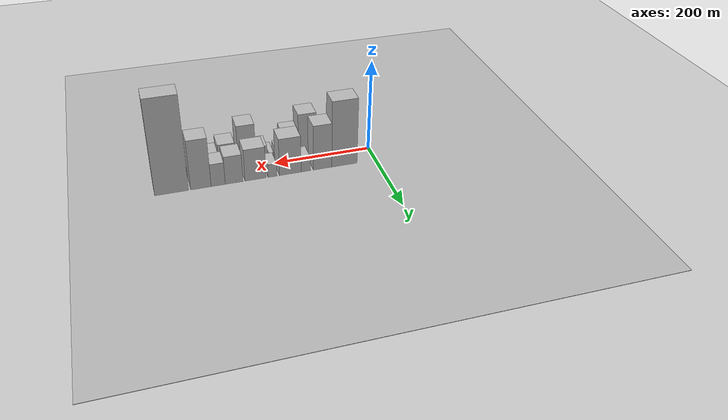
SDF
<?xml version="1.0" encoding="utf-8"?>

<sdf version="1.6">

   <world name="default">

      <gui fullscreen="0">

         <camera name="user_camera">

            <pose>-15 0 4.57585 0 0 0</pose>

            <view_controller>orbit</view_controller>

         </camera>

      </gui>

      <scene>

         <sky>

           <clouds>

             <speed>12</speed>

           </clouds>

         </sky>

         <ambient>0.4 0.4 0.4 1</ambient>

         <background>0.7 0.7 0.7 1</background>

         <shadows>1</shadows>

      </scene>

      <gravity>0 0 -9.8066</gravity>

      <magnetic_field>6e-06 2.3e-05 -4.2e-05</magnetic_field>

      <physics default="0" name="default_physics" type="ode">

         <ode>

            <solver>

               <type>quick</type>

               <iters>10</iters>

               <sor>1.0</sor>

               <use_dynamic_moi_rescaling>0</use_dynamic_moi_rescaling>

            </solver>

            <constraints>

               <cfm>0</cfm>

               <erp>0.2</erp>

               <contact_max_correcting_vel>100</contact_max_correcting_vel>

               <contact_surface_layer>0.001</contact_surface_layer>

            </constraints>

         </ode>

         <max_step_size>0.004</max_step_size>

         <real_time_factor>1</real_time_factor>

         <real_time_update_rate>250</real_time_update_rate>

      </physics>

      <light name="sun" type="directional">

         <cast_shadows>1</cast_shadows>

         <pose>0 0 10 0 0 0</pose>

         <diffuse>0.8 0.8 0.8 1</diffuse>

         <specular>0.2 0.2 0.2 1</specular>

         <attenuation>

            <range>1000</range>

            <constant>0.9</constant>

            <linear>0.01</linear>

            <quadratic>0.001</quadratic>

         </attenuation>

         <direction>-0.5 0.1 -0.9</direction>

      </light>

      <include>

         <name>ground_plane_1</name>

         <uri>model://HANNAS_ground_plane</uri>

         <pose>0 0 0  0 0 0</pose>

      </include>

      <include>

         <name>ground_plane_2</name>

         <uri>model://HANNAS_ground_plane</uri>

         <pose>100 0 0  0 0 0</pose>

      </include>

      <model name="building_1">

         <static>1</static>

         <pose frame="">66.2491 24.5000 0 0.000000 0.000000 1.570796</pose>

         <link name="link">

            <pose frame="">0 0 75.00 0 0 0</pose>

            <collision name="collision">

               <geometry>

                  <box>

                     <size>40.0000 52.4982 150.0000</size>

                  </box>

               </geometry>

               <max_contacts>10</max_contacts>

               <surface>

                  <contact>

                     <ode/>

                  </contact>

                  <bounce/>

                  <friction>

                     <torsional>

                        <ode/>

                     </torsional>

                     <ode/>

                  </friction>

               </surface>

            </collision>

            <visual name="visual">

               <cast_shadows>0</cast_shadows>

               <geometry>

                  <box>

                     <size>40.0000 52.4982 150.0000</size>

                  </box>

               </geometry>

               <material>

                  <script>

                     <uri>model://HANNAS_wall/materials/scripts</uri>

                     <uri>model://HANNAS_wall/materials/textures</uri>

                     <name>vrc/HANNAS_wall</name>

                  </script>

               </material>

            </visual>

            <self_collide>0</self_collide>

            <enable_wind>0</enable_wind>

            <kinematic>0</kinematic>

         </link>

      </model>

      <model name="building_2">

         <static>1</static>

         <pose frame="">111.5867 24.5000 0 0.000000 0.000000 1.570796</pose>

         <link name="link">

            <pose frame="">0 0 51.00 0 0 0</pose>

            <collision name="collision">

               <geometry>

                  <box>

                     <size>40.0000 38.1771 102.0000</size>

                  </box>

               </geometry>

               <max_contacts>10</max_contacts>

               <surface>

                  <contact>

                     <ode/>

                  </contact>

                  <bounce/>

                  <friction>

                     <torsional>

                        <ode/>

                     </torsional>

                     <ode/>

                  </friction>

               </surface>

            </collision>

            <visual name="visual">

               <cast_shadows>0</cast_shadows>

               <geometry>

                  <box>

                     <size>40.0000 38.1771 102.0000</size>

                  </box>

               </geometry>

               <material>

                  <script>

                     <uri>model://HANNAS_wall/materials/scripts</uri>

                     <uri>model://HANNAS_wall/materials/textures</uri>

                     <name>vrc/HANNAS_wall</name>

                  </script>

               </material>

            </visual>

            <self_collide>0</self_collide>

            <enable_wind>0</enable_wind>

            <kinematic>0</kinematic>

         </link>

      </model>

      <model name="building_3">

         <static>1</static>

         <pose frame="">146.1484 24.5000 0 0.000000 0.000000 1.570796</pose>

         <link name="link">

            <pose frame="">0 0 16.50 0 0 0</pose>

            <collision name="collision">

               <geometry>

                  <box>

                     <size>40.0000 18.9463 33.0000</size>

                  </box>

               </geometry>

               <max_contacts>10</max_contacts>

               <surface>

                  <contact>

                     <ode/>

                  </contact>

                  <bounce/>

                  <friction>

                     <torsional>

                        <ode/>

                     </torsional>

                     <ode/>

                  </friction>

               </surface>

            </collision>

            <visual name="visual">

               <cast_shadows>0</cast_shadows>

               <geometry>

                  <box>

                     <size>40.0000 18.9463 33.0000</size>

                  </box>

               </geometry>

               <material>

                  <script>

                     <uri>model://HANNAS_wall/materials/scripts</uri>

                     <uri>model://HANNAS_wall/materials/textures</uri>

                     <name>vrc/HANNAS_wall</name>

                  </script>

               </material>

            </visual>

            <self_collide>0</self_collide>

            <enable_wind>0</enable_wind>

            <kinematic>0</kinematic>

         </link>

      </model>

      <model name="building_4">

         <static>1</static>

         <pose frame="">177.6803 24.5000 0 0.000000 0.000000 1.570796</pose>

         <link name="link">

            <pose frame="">0 0 42.00 0 0 0</pose>

            <collision name="collision">

               <geometry>

                  <box>

                     <size>40.0000 44.1176 84.0000</size>

                  </box>

               </geometry>

               <max_contacts>10</max_contacts>

               <surface>

                  <contact>

                     <ode/>

                  </contact>

                  <bounce/>

                  <friction>

                     <torsional>

                        <ode/>

                     </torsional>

                     <ode/>

                  </friction>

               </surface>

            </collision>

            <visual name="visual">

               <cast_shadows>0</cast_shadows>

               <geometry>

                  <box>

                     <size>40.0000 44.1176 84.0000</size>

                  </box>

               </geometry>

               <material>

                  <script>

                     <uri>model://HANNAS_wall/materials/scripts</uri>

                     <uri>model://HANNAS_wall/materials/textures</uri>

                     <name>vrc/HANNAS_wall</name>

                  </script>

               </material>

            </visual>

            <self_collide>0</self_collide>

            <enable_wind>0</enable_wind>

            <kinematic>0</kinematic>

         </link>

      </model>

      <model name="building_5">

         <static>1</static>

         <pose frame="">213.7011 24.5000 0 0.000000 0.000000 1.570796</pose>

         <link name="link">

            <pose frame="">0 0 15.00 0 0 0</pose>

            <collision name="collision">

               <geometry>

                  <box>

                     <size>40.0000 17.9239 30.0000</size>

                  </box>

               </geometry>

               <max_contacts>10</max_contacts>

               <surface>

                  <contact>

                     <ode/>

                  </contact>

                  <bounce/>

                  <friction>

                     <torsional>

                        <ode/>

                     </torsional>

                     <ode/>

                  </friction>

               </surface>

            </collision>

            <visual name="visual">

               <cast_shadows>0</cast_shadows>

               <geometry>

                  <box>

                     <size>40.0000 17.9239 30.0000</size>

                  </box>

               </geometry>

               <material>

                  <script>

                     <uri>model://HANNAS_wall/materials/scripts</uri>

                     <uri>model://HANNAS_wall/materials/textures</uri>

                     <name>vrc/HANNAS_wall</name>

                  </script>

               </material>

            </visual>

            <self_collide>0</self_collide>

            <enable_wind>0</enable_wind>

            <kinematic>0</kinematic>

         </link>

      </model>

      <model name="building_6">

         <static>1</static>

         <pose frame="">247.5219 24.5000 0 0.000000 0.000000 1.570796</pose>

         <link name="link">

            <pose frame="">0 0 36.00 0 0 0</pose>

            <collision name="collision">

               <geometry>

                  <box>

                     <size>40.0000 41.7179 72.0000</size>

                  </box>

               </geometry>

               <max_contacts>10</max_contacts>

               <surface>

                  <contact>

                     <ode/>

                  </contact>

                  <bounce/>

                  <friction>

                     <torsional>

                        <ode/>

                     </torsional>

                     <ode/>

                  </friction>

               </surface>

            </collision>

            <visual name="visual">

               <cast_shadows>0</cast_shadows>

               <geometry>

                  <box>

                     <size>40.0000 41.7179 72.0000</size>

                  </box>

               </geometry>

               <material>

                  <script>

                     <uri>model://HANNAS_wall/materials/scripts</uri>

                     <uri>model://HANNAS_wall/materials/textures</uri>

                     <name>vrc/HANNAS_wall</name>

                  </script>

               </material>

            </visual>

            <self_collide>0</self_collide>

            <enable_wind>0</enable_wind>

            <kinematic>0</kinematic>

         </link>

      </model>

      <model name="building_7">

         <static>1</static>

         <pose frame="">289.7407 24.5000 0 0.000000 0.000000 1.570796</pose>

         <link name="link">

            <pose frame="">0 0 31.50 0 0 0</pose>

            <collision name="collision">

               <geometry>

                  <box>

                     <size>40.0000 34.7196 63.0000</size>

                  </box>

               </geometry>

               <max_contacts>10</max_contacts>

               <surface>

                  <contact>

                     <ode/>

                  </contact>

                  <bounce/>

                  <friction>

                     <torsional>

                        <ode/>

                     </torsional>

                     <ode/>

                  </friction>

               </surface>

            </collision>

            <visual name="visual">

               <cast_shadows>0</cast_shadows>

               <geometry>

                  <box>

                     <size>40.0000 34.7196 63.0000</size>

                  </box>

               </geometry>

               <material>

                  <script>

                     <uri>model://HANNAS_wall/materials/scripts</uri>

                     <uri>model://HANNAS_wall/materials/textures</uri>

                     <name>vrc/HANNAS_wall</name>

                  </script>

               </material>

            </visual>

            <self_collide>0</self_collide>

            <enable_wind>0</enable_wind>

            <kinematic>0</kinematic>

         </link>

      </model>

      <model name="building_8">

         <static>1</static>

         <pose frame="">320.7834 24.5000 0 0.000000 0.000000 1.570796</pose>

         <link name="link">

            <pose frame="">0 0 25.50 0 0 0</pose>

            <collision name="collision">

               <geometry>

                  <box>

                     <size>40.0000 27.3658 51.0000</size>

                  </box>

               </geometry>

               <max_contacts>10</max_contacts>

               <surface>

                  <contact>

                     <ode/>

                  </contact>

                  <bounce/>

                  <friction>

                     <torsional>

                        <ode/>

                     </torsional>

                     <ode/>

                  </friction>

               </surface>

            </collision>

            <visual name="visual">

               <cast_shadows>0</cast_shadows>

               <geometry>

                  <box>

                     <size>40.0000 27.3658 51.0000</size>

                  </box>

               </geometry>

               <material>

                  <script>

                     <uri>model://HANNAS_wall/materials/scripts</uri>

                     <uri>model://HANNAS_wall/materials/textures</uri>

                     <name>vrc/HANNAS_wall</name>

                  </script>

               </material>

            </visual>

            <self_collide>0</self_collide>

            <enable_wind>0</enable_wind>

            <kinematic>0</kinematic>

         </link>

      </model>

      <model name="building_9">

         <static>1</static>

         <pose frame="">354.2003 24.5000 0 0.000000 0.000000 1.570796</pose>

         <link name="link">

            <pose frame="">0 0 55.50 0 0 0</pose>

            <collision name="collision">

               <geometry>

                  <box>

                     <size>40.0000 39.4681 111.0000</size>

                  </box>

               </geometry>

               <max_contacts>10</max_contacts>

               <surface>

                  <contact>

                     <ode/>

                  </contact>

                  <bounce/>

                  <friction>

                     <torsional>

                        <ode/>

                     </torsional>

                     <ode/>

                  </friction>

               </surface>

            </collision>

            <visual name="visual">

               <cast_shadows>0</cast_shadows>

               <geometry>

                  <box>

                     <size>40.0000 39.4681 111.0000</size>

                  </box>

               </geometry>

               <material>

                  <script>

                     <uri>model://HANNAS_wall/materials/scripts</uri>

                     <uri>model://HANNAS_wall/materials/textures</uri>

                     <name>vrc/HANNAS_wall</name>

                  </script>

               </material>

            </visual>

            <self_collide>0</self_collide>

            <enable_wind>0</enable_wind>

            <kinematic>0</kinematic>

         </link>

      </model>

      <model name="building_10">

         <static>1</static>

         <pose frame="">410.0367 24.5000 0 0.000000 0.000000 1.570796</pose>

         <link name="link">

            <pose frame="">0 0 105.00 0 0 0</pose>

            <collision name="collision">

               <geometry>

                  <box>

                     <size>40.0000 64.2047 210.0000</size>

                  </box>

               </geometry>

               <max_contacts>10</max_contacts>

               <surface>

                  <contact>

                     <ode/>

                  </contact>

                  <bounce/>

                  <friction>

                     <torsional>

                        <ode/>

                     </torsional>

                     <ode/>

                  </friction>

               </surface>

            </collision>

            <visual name="visual">

               <cast_shadows>0</cast_shadows>

               <geometry>

                  <box>

                     <size>40.0000 64.2047 210.0000</size>

                  </box>

               </geometry>

               <material>

                  <script>

                     <uri>model://HANNAS_wall/materials/scripts</uri>

                     <uri>model://HANNAS_wall/materials/textures</uri>

                     <name>vrc/HANNAS_wall</name>

                  </script>

               </material>

            </visual>

            <self_collide>0</self_collide>

            <enable_wind>0</enable_wind>

            <kinematic>0</kinematic>

         </link>

      </model>

      <model name="building_11">

         <static>1</static>

         <pose frame="">49.8401 -24.5000 0 0.000000 0.000000 1.570796</pose>

         <link name="link">

            <pose frame="">0 0 18.00 0 0 0</pose>

            <collision name="collision">

               <geometry>

                  <box>

                     <size>40.0000 19.6802 36.0000</size>

                  </box>

               </geometry>

               <max_contacts>10</max_contacts>

               <surface>

                  <contact>

                     <ode/>

                  </contact>

                  <bounce/>

                  <friction>

                     <torsional>

                        <ode/>

                     </torsional>

                     <ode/>

                  </friction>

               </surface>

            </collision>

            <visual name="visual">

               <cast_shadows>0</cast_shadows>

               <geometry>

                  <box>

                     <size>40.0000 19.6802 36.0000</size>

                  </box>

               </geometry>

               <material>

                  <script>

                     <uri>model://HANNAS_wall/materials/scripts</uri>

                     <uri>model://HANNAS_wall/materials/textures</uri>

                     <name>vrc/HANNAS_wall</name>

                  </script>

               </material>

            </visual>

            <self_collide>0</self_collide>

            <enable_wind>0</enable_wind>

            <kinematic>0</kinematic>

         </link>

      </model>

      <model name="building_12">

         <static>1</static>

         <pose frame="">88.3204 -24.5000 0 0.000000 0.000000 1.570796</pose>

         <link name="link">

            <pose frame="">0 0 31.50 0 0 0</pose>

            <collision name="collision">

               <geometry>

                  <box>

                     <size>40.0000 37.2804 63.0000</size>

                  </box>

               </geometry>

               <max_contacts>10</max_contacts>

               <surface>

                  <contact>

                     <ode/>

                  </contact>

                  <bounce/>

                  <friction>

                     <torsional>

                        <ode/>

                     </torsional>

                     <ode/>

                  </friction>

               </surface>

            </collision>

            <visual name="visual">

               <cast_shadows>0</cast_shadows>

               <geometry>

                  <box>

                     <size>40.0000 37.2804 63.0000</size>

                  </box>

               </geometry>

               <material>

                  <script>

                     <uri>model://HANNAS_wall/materials/scripts</uri>

                     <uri>model://HANNAS_wall/materials/textures</uri>

                     <name>vrc/HANNAS_wall</name>

                  </script>

               </material>

            </visual>

            <self_collide>0</self_collide>

            <enable_wind>0</enable_wind>

            <kinematic>0</kinematic>

         </link>

      </model>

      <model name="building_13">

         <static>1</static>

         <pose frame="">129.5694 -24.5000 0 0.000000 0.000000 1.570796</pose>

         <link name="link">

            <pose frame="">0 0 51.00 0 0 0</pose>

            <collision name="collision">

               <geometry>

                  <box>

                     <size>40.0000 37.2177 102.0000</size>

                  </box>

               </geometry>

               <max_contacts>10</max_contacts>

               <surface>

                  <contact>

                     <ode/>

                  </contact>

                  <bounce/>

                  <friction>

                     <torsional>

                        <ode/>

                     </torsional>

                     <ode/>

                  </friction>

               </surface>

            </collision>

            <visual name="visual">

               <cast_shadows>0</cast_shadows>

               <geometry>

                  <box>

                     <size>40.0000 37.2177 102.0000</size>

                  </box>

               </geometry>

               <material>

                  <script>

                     <uri>model://HANNAS_wall/materials/scripts</uri>

                     <uri>model://HANNAS_wall/materials/textures</uri>

                     <name>vrc/HANNAS_wall</name>

                  </script>

               </material>

            </visual>

            <self_collide>0</self_collide>

            <enable_wind>0</enable_wind>

            <kinematic>0</kinematic>

         </link>

      </model>

      <model name="building_14">

         <static>1</static>

         <pose frame="">164.8557 -24.5000 0 0.000000 0.000000 1.570796</pose>

         <link name="link">

            <pose frame="">0 0 33.00 0 0 0</pose>

            <collision name="collision">

               <geometry>

                  <box>

                     <size>40.0000 33.3548 66.0000</size>

                  </box>

               </geometry>

               <max_contacts>10</max_contacts>

               <surface>

                  <contact>

                     <ode/>

                  </contact>

                  <bounce/>

                  <friction>

                     <torsional>

                        <ode/>

                     </torsional>

                     <ode/>

                  </friction>

               </surface>

            </collision>

            <visual name="visual">

               <cast_shadows>0</cast_shadows>

               <geometry>

                  <box>

                     <size>40.0000 33.3548 66.0000</size>

                  </box>

               </geometry>

               <material>

                  <script>

                     <uri>model://HANNAS_wall/materials/scripts</uri>

                     <uri>model://HANNAS_wall/materials/textures</uri>

                     <name>vrc/HANNAS_wall</name>

                  </script>

               </material>

            </visual>

            <self_collide>0</self_collide>

            <enable_wind>0</enable_wind>

            <kinematic>0</kinematic>

         </link>

      </model>

      <model name="building_15">

         <static>1</static>

         <pose frame="">188.0762 -24.5000 0 0.000000 0.000000 1.570796</pose>

         <link name="link">

            <pose frame="">0 0 13.50 0 0 0</pose>

            <collision name="collision">

               <geometry>

                  <box>

                     <size>40.0000 13.0862 27.0000</size>

                  </box>

               </geometry>

               <max_contacts>10</max_contacts>

               <surface>

                  <contact>

                     <ode/>

                  </contact>

                  <bounce/>

                  <friction>

                     <torsional>

                        <ode/>

                     </torsional>

                     <ode/>

                  </friction>

               </surface>

            </collision>

            <visual name="visual">

               <cast_shadows>0</cast_shadows>

               <geometry>

                  <box>

                     <size>40.0000 13.0862 27.0000</size>

                  </box>

               </geometry>

               <material>

                  <script>

                     <uri>model://HANNAS_wall/materials/scripts</uri>

                     <uri>model://HANNAS_wall/materials/textures</uri>

                     <name>vrc/HANNAS_wall</name>

                  </script>

               </material>

            </visual>

            <self_collide>0</self_collide>

            <enable_wind>0</enable_wind>

            <kinematic>0</kinematic>

         </link>

      </model>

      <model name="building_16">

         <static>1</static>

         <pose frame="">204.5970 -24.5000 0 0.000000 0.000000 1.570796</pose>

         <link name="link">

            <pose frame="">0 0 12.00 0 0 0</pose>

            <collision name="collision">

               <geometry>

                  <box>

                     <size>40.0000 9.9553 24.0000</size>

                  </box>

               </geometry>

               <max_contacts>10</max_contacts>

               <surface>

                  <contact>

                     <ode/>

                  </contact>

                  <bounce/>

                  <friction>

                     <torsional>

                        <ode/>

                     </torsional>

                     <ode/>

                  </friction>

               </surface>

            </collision>

            <visual name="visual">

               <cast_shadows>0</cast_shadows>

               <geometry>

                  <box>

                     <size>40.0000 9.9553 24.0000</size>

                  </box>

               </geometry>

               <material>

                  <script>

                     <uri>model://HANNAS_wall/materials/scripts</uri>

                     <uri>model://HANNAS_wall/materials/textures</uri>

                     <name>vrc/HANNAS_wall</name>

                  </script>

               </material>

            </visual>

            <self_collide>0</self_collide>

            <enable_wind>0</enable_wind>

            <kinematic>0</kinematic>

         </link>

      </model>

      <model name="building_17">

         <static>1</static>

         <pose frame="">224.1870 -24.5000 0 0.000000 0.000000 1.570796</pose>

         <link name="link">

            <pose frame="">0 0 21.00 0 0 0</pose>

            <collision name="collision">

               <geometry>

                  <box>

                     <size>40.0000 23.2249 42.0000</size>

                  </box>

               </geometry>

               <max_contacts>10</max_contacts>

               <surface>

                  <contact>

                     <ode/>

                  </contact>

                  <bounce/>

                  <friction>

                     <torsional>

                        <ode/>

                     </torsional>

                     <ode/>

                  </friction>

               </surface>

            </collision>

            <visual name="visual">

               <cast_shadows>0</cast_shadows>

               <geometry>

                  <box>

                     <size>40.0000 23.2249 42.0000</size>

                  </box>

               </geometry>

               <material>

                  <script>

                     <uri>model://HANNAS_wall/materials/scripts</uri>

                     <uri>model://HANNAS_wall/materials/textures</uri>

                     <name>vrc/HANNAS_wall</name>

                  </script>

               </material>

            </visual>

            <self_collide>0</self_collide>

            <enable_wind>0</enable_wind>

            <kinematic>0</kinematic>

         </link>

      </model>

      <model name="building_18">

         <static>1</static>

         <pose frame="">253.7835 -24.5000 0 0.000000 0.000000 1.570796</pose>

         <link name="link">

            <pose frame="">0 0 48.00 0 0 0</pose>

            <collision name="collision">

               <geometry>

                  <box>

                     <size>40.0000 35.9681 96.0000</size>

                  </box>

               </geometry>

               <max_contacts>10</max_contacts>

               <surface>

                  <contact>

                     <ode/>

                  </contact>

                  <bounce/>

                  <friction>

                     <torsional>

                        <ode/>

                     </torsional>

                     <ode/>

                  </friction>

               </surface>

            </collision>

            <visual name="visual">

               <cast_shadows>0</cast_shadows>

               <geometry>

                  <box>

                     <size>40.0000 35.9681 96.0000</size>

                  </box>

               </geometry>

               <material>

                  <script>

                     <uri>model://HANNAS_wall/materials/scripts</uri>

                     <uri>model://HANNAS_wall/materials/textures</uri>

                     <name>vrc/HANNAS_wall</name>

                  </script>

               </material>

            </visual>

            <self_collide>0</self_collide>

            <enable_wind>0</enable_wind>

            <kinematic>0</kinematic>

         </link>

      </model>

      <model name="building_19">

         <static>1</static>

         <pose frame="">293.7410 -24.5000 0 0.000000 0.000000 1.570796</pose>

         <link name="link">

            <pose frame="">0 0 30.00 0 0 0</pose>

            <collision name="collision">

               <geometry>

                  <box>

                     <size>40.0000 33.9470 60.0000</size>

                  </box>

               </geometry>

               <max_contacts>10</max_contacts>

               <surface>

                  <contact>

                     <ode/>

                  </contact>

                  <bounce/>

                  <friction>

                     <torsional>

                        <ode/>

                     </torsional>

                     <ode/>

                  </friction>

               </surface>

            </collision>

            <visual name="visual">

               <cast_shadows>0</cast_shadows>

               <geometry>

                  <box>

                     <size>40.0000 33.9470 60.0000</size>

                  </box>

               </geometry>

               <material>

                  <script>

                     <uri>model://HANNAS_wall/materials/scripts</uri>

                     <uri>model://HANNAS_wall/materials/textures</uri>

                     <name>vrc/HANNAS_wall</name>

                  </script>

               </material>

            </visual>

            <self_collide>0</self_collide>

            <enable_wind>0</enable_wind>

            <kinematic>0</kinematic>

         </link>

      </model>

      <model name="building_20">

         <static>1</static>

         <pose frame="">321.5718 -24.5000 0 0.000000 0.000000 1.570796</pose>

         <link name="link">

            <pose frame="">0 0 21.00 0 0 0</pose>

            <collision name="collision">

               <geometry>

                  <box>

                     <size>40.0000 21.7144 42.0000</size>

                  </box>

               </geometry>

               <max_contacts>10</max_contacts>

               <surface>

                  <contact>

                     <ode/>

                  </contact>

                  <bounce/>

                  <friction>

                     <torsional>

                        <ode/>

                     </torsional>

                     <ode/>

                  </friction>

               </surface>

            </collision>

            <visual name="visual">

               <cast_shadows>0</cast_shadows>

               <geometry>

                  <box>

                     <size>40.0000 21.7144 42.0000</size>

                  </box>

               </geometry>

               <material>

                  <script>

                     <uri>model://HANNAS_wall/materials/scripts</uri>

                     <uri>model://HANNAS_wall/materials/textures</uri>

                     <name>vrc/HANNAS_wall</name>

                  </script>

               </material>

            </visual>

            <self_collide>0</self_collide>

            <enable_wind>0</enable_wind>

            <kinematic>0</kinematic>

         </link>

      </model>

      <model name="building_21">

         <static>1</static>

         <pose frame="">348.6904 -24.5000 0 0.000000 0.000000 1.570796</pose>

         <link name="link">

            <pose frame="">0 0 28.50 0 0 0</pose>

            <collision name="collision">

               <geometry>

                  <box>

                     <size>40.0000 32.5229 57.0000</size>

                  </box>

               </geometry>

               <max_contacts>10</max_contacts>

               <surface>

                  <contact>

                     <ode/>

                  </contact>

                  <bounce/>

                  <friction>

                     <torsional>

                        <ode/>

                     </torsional>

                     <ode/>

                  </friction>

               </surface>

            </collision>

            <visual name="visual">

               <cast_shadows>0</cast_shadows>

               <geometry>

                  <box>

                     <size>40.0000 32.5229 57.0000</size>

                  </box>

               </geometry>

               <material>

                  <script>

                     <uri>model://HANNAS_wall/materials/scripts</uri>

                     <uri>model://HANNAS_wall/materials/textures</uri>

                     <name>vrc/HANNAS_wall</name>

                  </script>

               </material>

            </visual>

            <self_collide>0</self_collide>

            <enable_wind>0</enable_wind>

            <kinematic>0</kinematic>

         </link>

      </model>

      <model name="building_22">

         <static>1</static>

         <pose frame="">374.0965 -24.5000 0 0.000000 0.000000 1.570796</pose>

         <link name="link">

            <pose frame="">0 0 10.50 0 0 0</pose>

            <collision name="collision">

               <geometry>

                  <box>

                     <size>40.0000 10.2892 21.0000</size>

                  </box>

               </geometry>

               <max_contacts>10</max_contacts>

               <surface>

                  <contact>

                     <ode/>

                  </contact>

                  <bounce/>

                  <friction>

                     <torsional>

                        <ode/>

                     </torsional>

                     <ode/>

                  </friction>

               </surface>

            </collision>

            <visual name="visual">

               <cast_shadows>0</cast_shadows>

               <geometry>

                  <box>

                     <size>40.0000 10.2892 21.0000</size>

                  </box>

               </geometry>

               <material>

                  <script>

                     <uri>model://HANNAS_wall/materials/scripts</uri>

                     <uri>model://HANNAS_wall/materials/textures</uri>

                     <name>vrc/HANNAS_wall</name>

                  </script>

               </material>

            </visual>

            <self_collide>0</self_collide>

            <enable_wind>0</enable_wind>

            <kinematic>0</kinematic>

         </link>

      </model>

      <model name="building_23">

         <static>1</static>

         <pose frame="">389.2491 -24.5000 0 0.000000 0.000000 1.570796</pose>

         <link name="link">

            <pose frame="">0 0 19.50 0 0 0</pose>

            <collision name="collision">

               <geometry>

                  <box>

                     <size>40.0000 20.0160 39.0000</size>

                  </box>

               </geometry>

               <max_contacts>10</max_contacts>

               <surface>

                  <contact>

                     <ode/>

                  </contact>

                  <bounce/>

                  <friction>

                     <torsional>

                        <ode/>

                     </torsional>

                     <ode/>

                  </friction>

               </surface>

            </collision>

            <visual name="visual">

               <cast_shadows>0</cast_shadows>

               <geometry>

                  <box>

                     <size>40.0000 20.0160 39.0000</size>

                  </box>

               </geometry>

               <material>

                  <script>

                     <uri>model://HANNAS_wall/materials/scripts</uri>

                     <uri>model://HANNAS_wall/materials/textures</uri>

                     <name>vrc/HANNAS_wall</name>

                  </script>

               </material>

            </visual>

            <self_collide>0</self_collide>

            <enable_wind>0</enable_wind>

            <kinematic>0</kinematic>

         </link>

      </model>

      <model name="building_24">

         <static>1</static>

         <pose frame="">422.8997 -24.5000 0 0.000000 0.000000 1.570796</pose>

         <link name="link">

            <pose frame="">0 0 49.50 0 0 0</pose>

            <collision name="collision">

               <geometry>

                  <box>

                     <size>40.0000 31.2851 99.0000</size>

                  </box>

               </geometry>

               <max_contacts>10</max_contacts>

               <surface>

                  <contact>

                     <ode/>

                  </contact>

                  <bounce/>

                  <friction>

                     <torsional>

                        <ode/>

                     </torsional>

                     <ode/>

                  </friction>

               </surface>

            </collision>

            <visual name="visual">

               <cast_shadows>0</cast_shadows>

               <geometry>

                  <box>

                     <size>40.0000 31.2851 99.0000</size>

                  </box>

               </geometry>

               <material>

                  <script>

                     <uri>model://HANNAS_wall/materials/scripts</uri>

                     <uri>model://HANNAS_wall/materials/textures</uri>

                     <name>vrc/HANNAS_wall</name>

                  </script>

               </material>

            </visual>

            <self_collide>0</self_collide>

            <enable_wind>0</enable_wind>

            <kinematic>0</kinematic>

         </link>

      </model>

   </world>

</sdf>

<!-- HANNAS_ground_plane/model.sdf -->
<sdf version="1.4">
<model name="HANNAS_ground_plane">
  <static>true</static>
    <link name="link">
      <collision name="collision">
        <geometry>
          <plane>
            <normal>0 0 1</normal>
            <size>1000 1000</size>
          </plane>
        </geometry>
        <surface>
          <friction>
            <ode>
              <mu>100</mu>
              <mu2>50</mu2>
            </ode>
          </friction>
        </surface>
      </collision>
      <visual name="visual">
        <cast_shadows>false</cast_shadows>
        <geometry>
          <plane>
            <normal>0 0 1</normal>
            <size>1000 1000</size>
          </plane>
        </geometry>
        <material>
          <script>
            <uri>model://HANNAS_ground_plane/materials/scripts/HANNAS_ground_plane.material</uri>
	    <uri>model://HANNAS_ground_plane/materials/textures</uri>
            <name>HANNASGroundPlane/Image</name>
          </script>
        </material>
      </visual>
    </link>
  </model>
</sdf>
